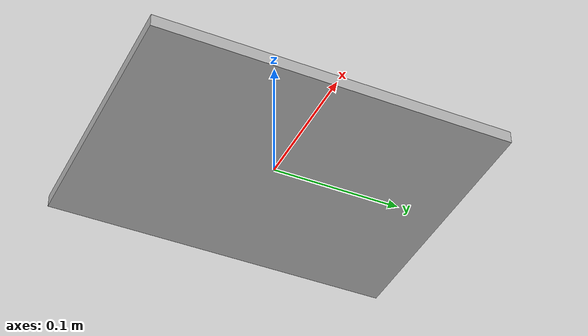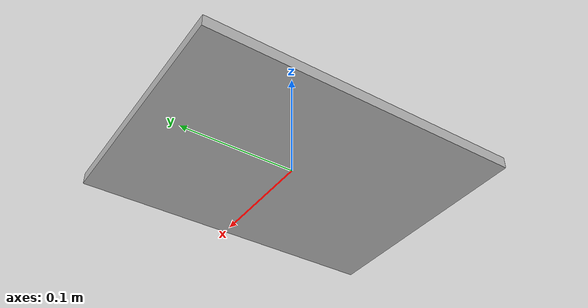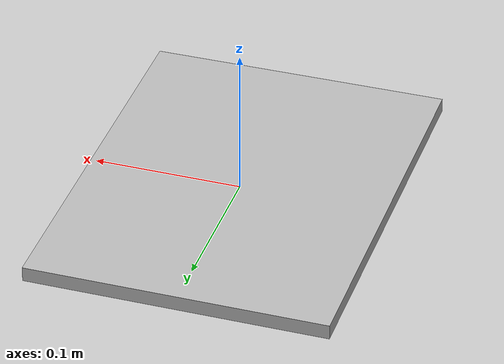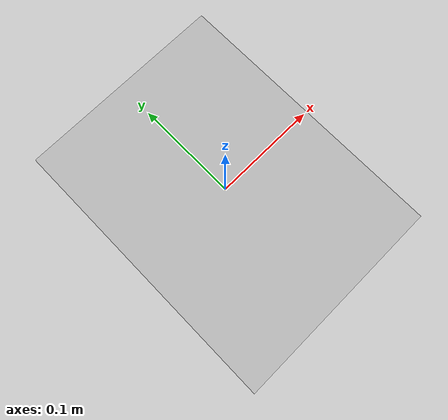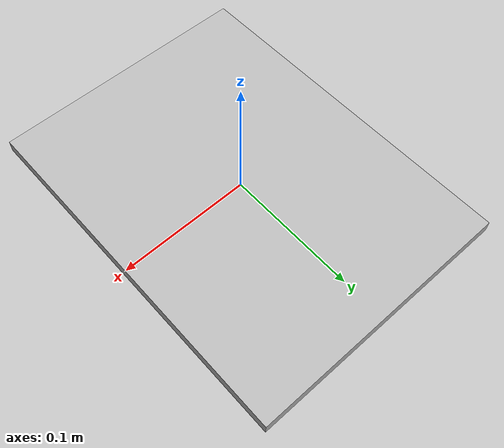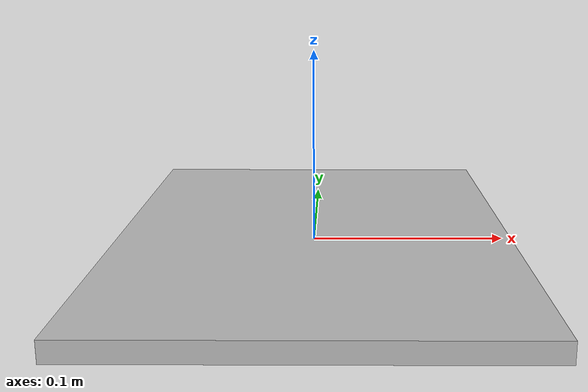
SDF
<?xml version="1.0"?>
<sdf version="1.4">
  <model name="qr_code_calibration">
   <link name="qr_code_calibration">
      <pose>0 0 0 0 0 0</pose>
      <collision name="collision">
        <geometry>
            <box>
            <size>0.2032 0.27093333333 0.01</size>
          </box>
        </geometry>
      </collision>
      <visual name="visual">
        <geometry>
          <box>
            <size>0.2032 0.27093333333 0.01</size>
          </box>
        </geometry>
        <material>
		  <script>
            <uri>model://qr_code_calibration/materials/scripts/qr_calibration.material</uri>
            <uri>model://qr_code_calibration/materials/textures/qr_calibration.png</uri>
            <name>qr_calibration/Image</name>
          </script>
        </material>
      </visual>
    </link>

  </model>
</sdf>
